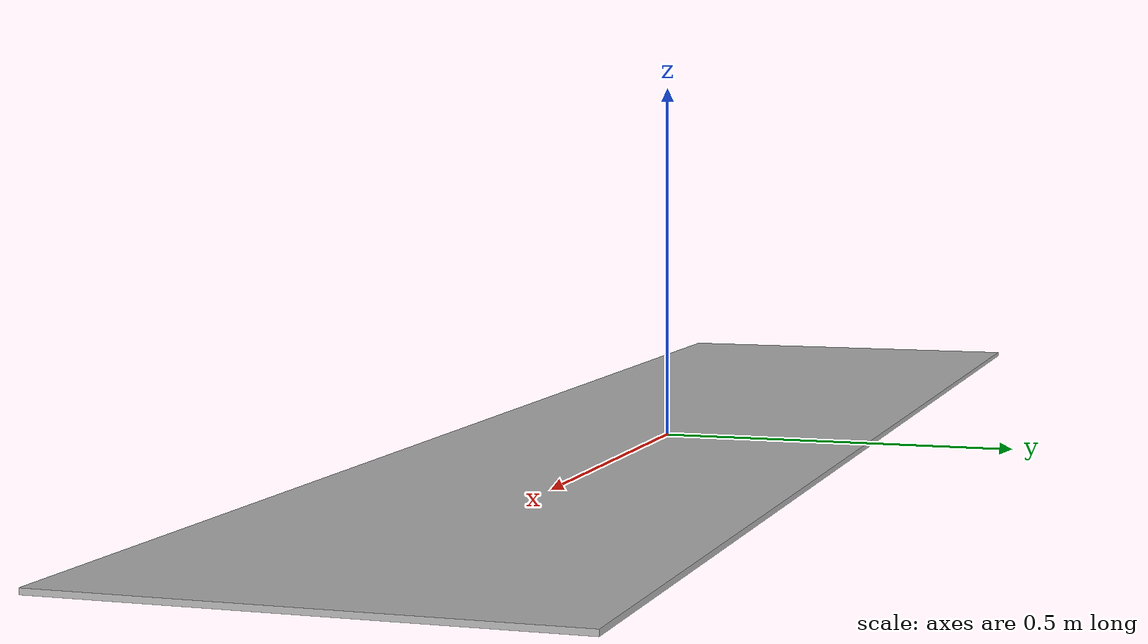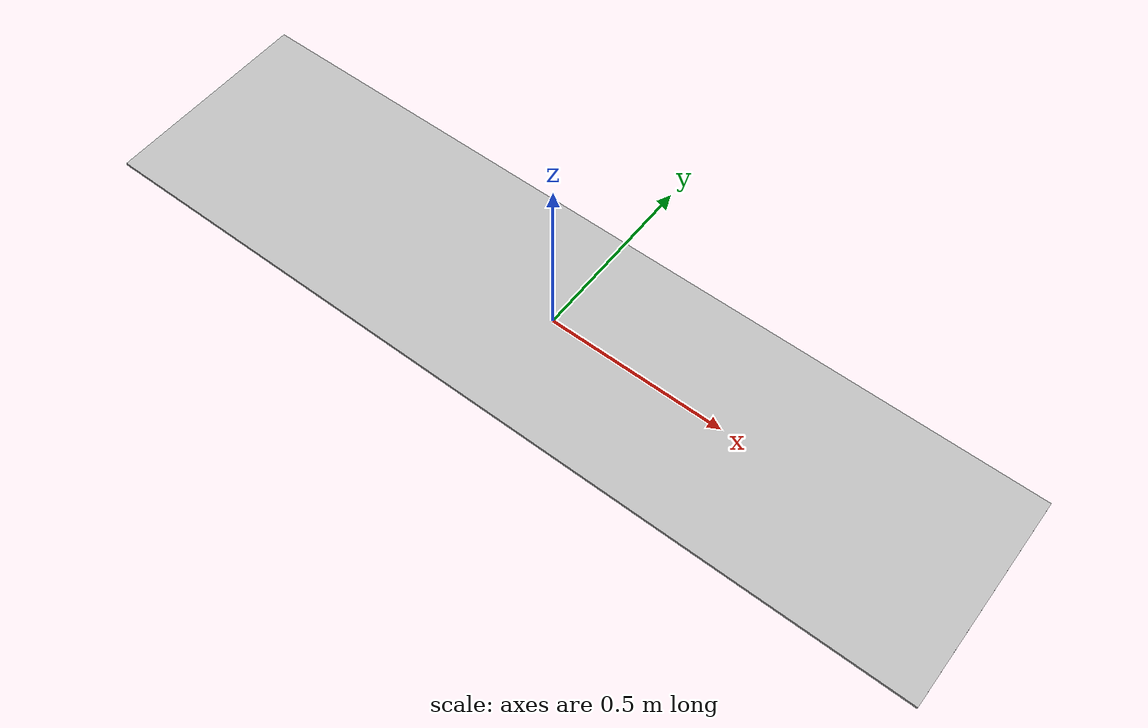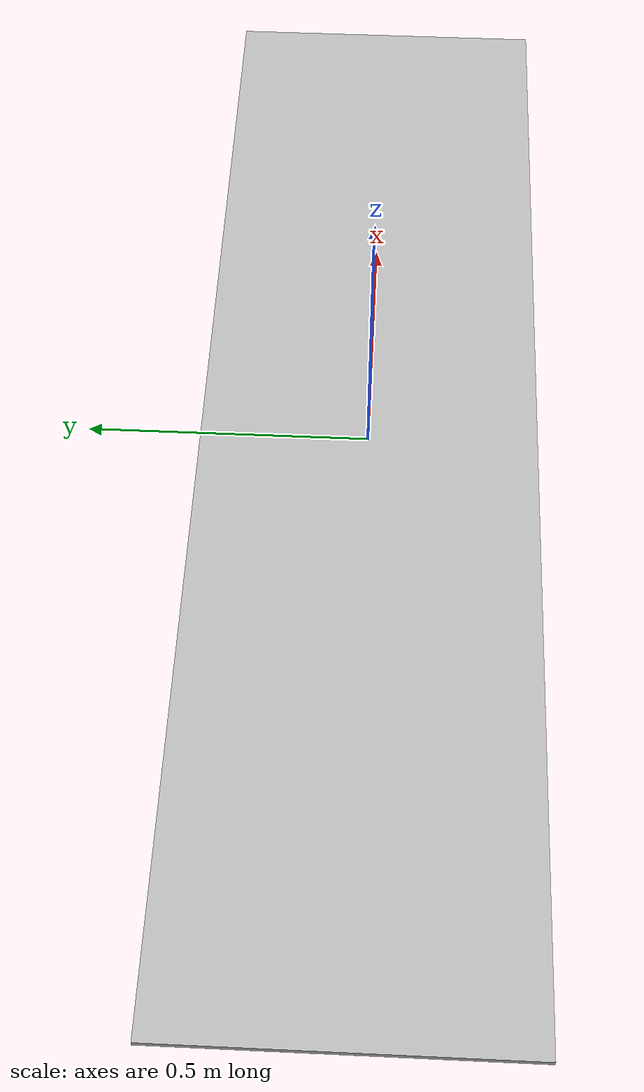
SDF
<?xml version="1.0" ?>
<sdf version="1.4">
  <model name="dot_grid">
    <static>true</static>
    <link name="link">
      <pose>0 0 0 0 0 0</pose>
      <visual name="visual">
        <cast_shadows>false</cast_shadows>
        <geometry>
          <box>
            <size>2.4 0.6 0.007</size>
          </box>
        </geometry>
        <material>
          <script>
            <uri>model://dot_grid/materials/scripts</uri>
            <uri>model://dot_grid/materials/textures</uri>
            <name>dot_grid</name>
          </script>
        </material>
      </visual>
    </link>
  </model>
</sdf>
